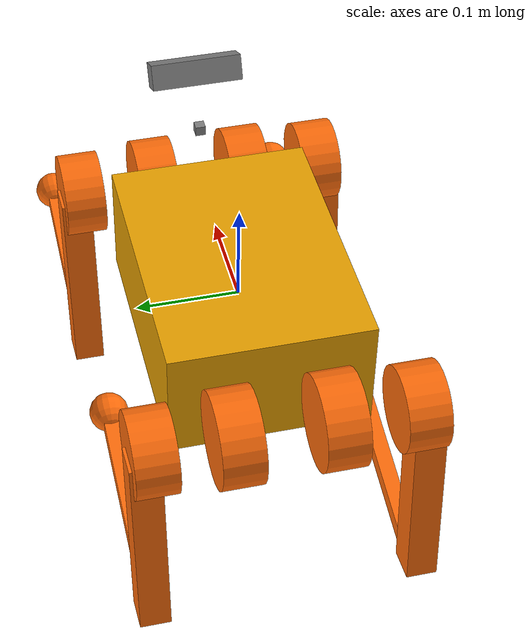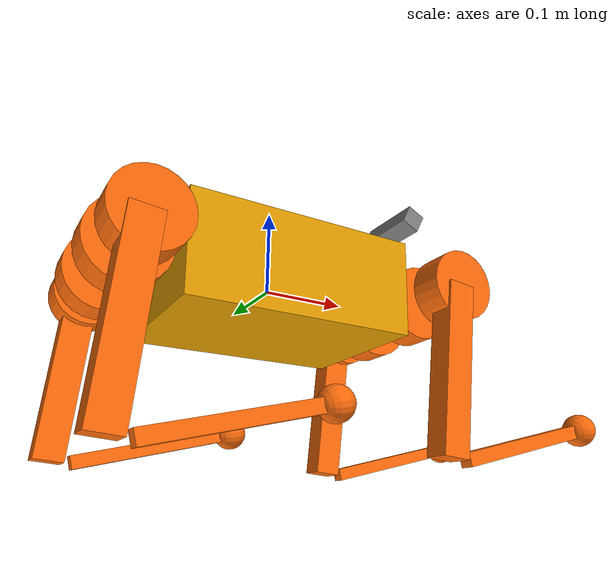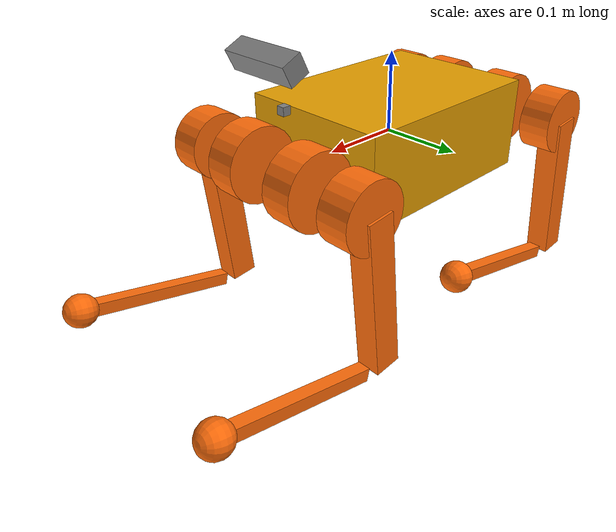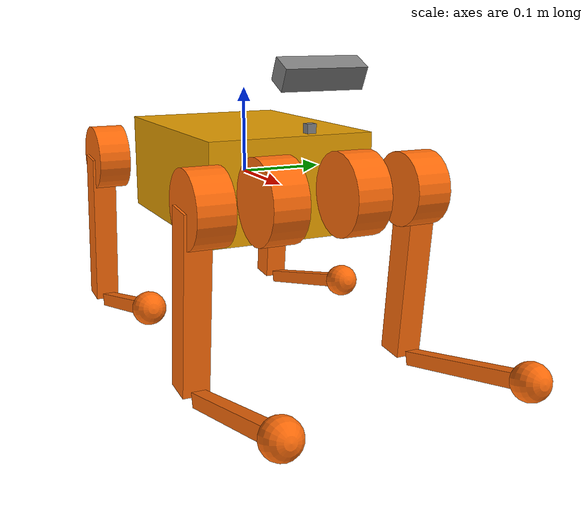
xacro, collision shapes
<?xml version="1.0"?>

<robot xmlns:xacro="http://www.ros.org/wiki/xacro" name="robot">
    <xacro:arg name="sim" default="false" />
    <xacro:arg name="robot_type" default="a1" />
    <xacro:arg name="ns" default="" />

    <xacro:include filename="$(find legged_unitree_description)/urdf/common/materials.xacro" />
    <xacro:include filename="$(find legged_unitree_description)/urdf/common/leg.xacro" />
    <xacro:include filename="$(find legged_unitree_description)/urdf/common/imu.xacro" />
    <xacro:include filename="$(find legged_unitree_description)/urdf/$(arg robot_type)/const.xacro" />
    <xacro:include filename="$(find custom_description)/urdf/sensor_d435.xacro" />
    <xacro:include filename="$(find custom_description)/urdf/sensor_t265.xacro" />

    <xacro:property name="mesh_path"
        value="package://legged_unitree_description/meshes/$(arg robot_type)" />

    <link name="base">
        <visual>
            <origin rpy="0 0 0" xyz="0 0 0" />
            <geometry>
                <mesh filename="${mesh_path}/trunk.dae" scale="1 1 1" />
            </geometry>
        </visual>
        <collision>
            <origin rpy="0 0 0" xyz="0 0 0" />
            <geometry>
                <box size="${trunk_length} ${trunk_width} ${trunk_height}" />
            </geometry>
        </collision>
        <inertial>
            <origin rpy="0 0 0" xyz="${trunk_com_x} ${trunk_com_y} ${trunk_com_z}" />
            <mass value="${trunk_mass}" />
            <inertia
                ixx="${trunk_ixx}" ixy="${trunk_ixy}" ixz="${trunk_ixz}"
                iyy="${trunk_iyy}" iyz="${trunk_iyz}"
                izz="${trunk_izz}" />
        </inertial>
    </link>

    <xacro:IMU connected_to="base" imu_name="base_imu" xyz="0. 0. 0." rpy="0. 0. 0." />

    <xacro:leg prefix="LF" mesh_path="${mesh_path}" mirror="1" mirror_dae="True" front_hind="1"
        front_hind_dae="True">
        <origin rpy="0 0 0" xyz="${leg_offset_x} ${leg_offset_y} 0" />
    </xacro:leg>

    <xacro:leg prefix="LH" mesh_path="${mesh_path}" mirror="1" mirror_dae="True" front_hind="-1"
        front_hind_dae="False">
        <origin rpy="0 0 0" xyz="${-leg_offset_x} ${leg_offset_y} 0" />
    </xacro:leg>

    <xacro:leg prefix="RF" mesh_path="${mesh_path}" mirror="-1" mirror_dae="False" front_hind="1"
        front_hind_dae="True">
        <origin rpy="0 0 0" xyz="${leg_offset_x} ${-leg_offset_y} 0" />
    </xacro:leg>

    <xacro:leg prefix="RH" mesh_path="${mesh_path}" mirror="-1" mirror_dae="False" front_hind="-1"
        front_hind_dae="False">
        <origin rpy="0 0 0" xyz="${-leg_offset_x} ${-leg_offset_y} 0" />
    </xacro:leg>

    <xacro:sensor_t265 name="tracking_camera" topics_ns="$(arg ns)/tracking_camera" parent="base">
        <origin xyz="0.17 0.0 0.07" rpy="0 0.0 0" />
    </xacro:sensor_t265>

    <xacro:sensor_d435 name="front_camera" topics_ns="$(arg ns)/front_camera" parent="base"
        sim="$(arg sim)">
        <origin xyz="0.185 0.0 0.115" rpy="0 0.45 0" />
    </xacro:sensor_d435>

    <!-- ros_control plugin -->
    <xacro:if value="$(arg sim)">

        <gazebo>
            <plugin name="gazebo_ros_control" filename="libcustom_legged_hw_sim.so">
                <robotNamespace>/$(arg ns)</robotNamespace>
                <robotParam>legged_robot_description</robotParam>
                <robotSimType>custom_gazebo/CustomLeggedHWSim</robotSimType>
            </plugin>
        </gazebo>

        <gazebo>
            <plugin name="p3d_base_controller" filename="libgazebo_ros_p3d.so">
                <alwaysOn>true</alwaysOn>
                <updateRate>1000.0</updateRate>
                <bodyName>base</bodyName>
                <topicName>ground_truth/state</topicName>
                <gaussianNoise>0</gaussianNoise>
                <frameName>world</frameName>
                <xyzOffsets>0 0 0</xyzOffsets>
                <rpyOffsets>0 0 0</rpyOffsets>
            </plugin>
        </gazebo>

    </xacro:if>

</robot>

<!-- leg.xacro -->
<robot xmlns:xacro="http://www.ros.org/wiki/xacro">

    <xacro:include filename="$(find legged_unitree_description)/urdf/common/transmission.xacro"/>

    <xacro:macro name="leg" params="prefix mirror mirror_dae front_hind front_hind_dae *origin">

        <joint name="${prefix}_HAA" type="revolute">
            <xacro:insert_block name="origin"/>
            <parent link="base"/>
            <child link="${prefix}_hip"/>
            <axis xyz="1 0 0"/>
            <dynamics damping="${damping}" friction="${friction}"/>
            <xacro:if value="${(mirror_dae == True)}">
                <limit effort="${hip_torque_max}" velocity="${hip_velocity_max}" lower="${hip_min}" upper="${hip_max}"/>
            </xacro:if>
            <xacro:if value="${(mirror_dae == False)}">
                <limit effort="${hip_torque_max}" velocity="${hip_velocity_max}" lower="${-hip_max}" upper="${-hip_min}"/>
            </xacro:if>
        </joint>

        <link name="${prefix}_hip">
            <visual>
                <xacro:if value="${(mirror_dae == True) and (front_hind_dae == True)}">
                    <origin rpy="0 0 0" xyz="0 0 0"/>
                </xacro:if>
                <xacro:if value="${(mirror_dae == False) and (front_hind_dae == True)}">
                    <origin rpy="${pi} 0 0" xyz="0 0 0"/>
                </xacro:if>
                <xacro:if value="${(mirror_dae == True) and (front_hind_dae == False)}">
                    <origin rpy="0 ${pi} 0" xyz="0 0 0"/>
                </xacro:if>
                <xacro:if value="${(mirror_dae == False) and (front_hind_dae == False)}">
                    <origin rpy="${pi} ${pi} 0" xyz="0 0 0"/>
                </xacro:if>
                <geometry>
                    <mesh filename="package://legged_unitree_description/meshes/$(arg robot_type)/hip.dae"
                          scale="1 1 1"/>
                </geometry>
                <material name="orange"/>
            </visual>
            <collision>
                <origin rpy="${pi/2.0} 0 0" xyz="0 0 0"/>
                <geometry>
                    <cylinder length="${hip_length}" radius="${hip_radius}"/>
                </geometry>
            </collision>
            <inertial>
                <origin rpy="0 0 0" xyz="${hip_com_x*front_hind} ${hip_com_y*mirror} ${hip_com_z}"/>
                <mass value="${hip_mass}"/>
                <inertia
                        ixx="${hip_ixx}" ixy="${hip_ixy*mirror*front_hind}" ixz="${hip_ixz*front_hind}"
                        iyy="${hip_iyy}" iyz="${hip_iyz*mirror}"
                        izz="${hip_izz}"/>
            </inertial>
        </link>

        <joint name="${prefix}_HFE" type="revolute">
            <origin rpy="0 0 0" xyz="0 ${thigh_offset*mirror} 0"/>
            <parent link="${prefix}_hip"/>
            <child link="${prefix}_thigh"/>
            <axis xyz="0 1 0"/>
            <dynamics damping="${damping}" friction="${friction}"/>
            <limit effort="${thigh_torque_max}" velocity="${thigh_velocity_max}" lower="${thigh_min}" upper="${thigh_max}"/>
        </joint>

        <link name="${prefix}_thigh">
            <visual>
                <origin rpy="0 0 0" xyz="0 0 0"/>
                <geometry>
                    <xacro:if value="${mirror_dae == True}">
                        <mesh filename="package://legged_unitree_description/meshes/$(arg robot_type)/thigh.dae"
                              scale="1 1 1"/>
                    </xacro:if>
                    <xacro:if value="${mirror_dae == False}">
                        <mesh filename="package://legged_unitree_description/meshes/$(arg robot_type)/thigh_mirror.dae"
                              scale="1 1 1"/>
                    </xacro:if>
                </geometry>
                <material name="orange"/>
            </visual>
            <collision>
                <origin rpy="0 ${pi/2.0+0.1} 0" xyz="${thigh_x_offset} 0 ${-thigh_length/2.0}"/>
                <geometry>
                    <box size="${thigh_length} ${thigh_width} ${thigh_height}"/>
                </geometry>
            </collision>
            <collision>
                <origin rpy="${pi/2.0} 0 0" xyz="0 ${mirror*thigh_shoulder_y_offset} 0"/>
                <geometry>
                    <cylinder length="${thigh_shoulder_length}" radius="${thigh_shoulder_radius}"/>
                </geometry>
            </collision>
            <inertial>
                <origin rpy="0 0 0" xyz="${thigh_com_x} ${thigh_com_y*mirror} ${thigh_com_z}"/>
                <mass value="${thigh_mass}"/>
                <inertia
                        ixx="${thigh_ixx}" ixy="${thigh_ixy*mirror}" ixz="${thigh_ixz}"
                        iyy="${thigh_iyy}" iyz="${thigh_iyz*mirror}"
                        izz="${thigh_izz}"/>
            </inertial>
        </link>

        <joint name="${prefix}_KFE" type="revolute">
            <origin rpy="0 0 0" xyz="0 0 ${-thigh_length}"/>
            <parent link="${prefix}_thigh"/>
            <child link="${prefix}_calf"/>
            <axis xyz="0 1 0"/>
            <dynamics damping="${damping}" friction="${friction}"/>
            <limit effort="${calf_torque_max}" velocity="${calf_velocity_max}" lower="${calf_min}" upper="${calf_max}"/>
        </joint>

        <link name="${prefix}_calf">
            <visual>
                <origin rpy="0 0 0" xyz="0 0 0"/>
                <geometry>
                    <mesh filename="package://legged_unitree_description/meshes/$(arg robot_type)/calf.dae"
                          scale="1 1 1"/>
                </geometry>
                <material name="orange"/>
            </visual>
            <collision>
                <origin rpy="0 ${pi/2.0} 0" xyz="${calf_x_offset} 0 ${-calf_length/2.0}"/>
                <geometry>
                    <box size="${calf_length} ${calf_width} ${calf_height}"/>
                </geometry>
            </collision>
            <inertial>
                <origin rpy="0 0 0" xyz="${calf_com_x} ${calf_com_y} ${calf_com_z}"/>
                <mass value="${calf_mass}"/>
                <inertia
                        ixx="${calf_ixx}" ixy="${calf_ixy}" ixz="${calf_ixz}"
                        iyy="${calf_iyy}" iyz="${calf_iyz}"
                        izz="${calf_izz}"/>
            </inertial>
        </link>

        <joint name="${prefix}_foot_fixed" type="fixed">
            <origin rpy="0 0 0" xyz="0 0 ${-(calf_length)}"/>
            <parent link="${prefix}_calf"/>
            <child link="${prefix}_FOOT"/>
        </joint>

        <link name="${prefix}_FOOT">
            <visual>
                <origin rpy="0 0 0" xyz="0 0 0"/>
                <geometry>
                    <sphere radius="${foot_radius-0.01}"/>
                </geometry>
                <material name="orange"/>
            </visual>
            <collision>
                <origin rpy="0 0 0" xyz="0 0 0"/>
                <geometry>
                    <sphere radius="${foot_radius}"/>
                </geometry>
            </collision>
            <inertial>
                <mass value="${foot_mass}"/>
                <inertia
                        ixx="${(2*foot_mass)/5.0*(foot_radius*foot_radius)}" ixy="0.0" ixz="0.0"
                        iyy="${(2*foot_mass)/5.0*(foot_radius*foot_radius)}" iyz="0.0"
                        izz="${(2*foot_mass)/5.0*(foot_radius*foot_radius)}"/>
            </inertial>
        </link>

        <gazebo reference="${prefix}_foot_fixed">
            <disableFixedJointLumping>true</disableFixedJointLumping>
        </gazebo>

        <gazebo reference="${prefix}_hip">
            <mu1>0.2</mu1>
            <mu2>0.2</mu2>
            <material>Gazebo/DarkGrey</material>
        </gazebo>
        <gazebo reference="${prefix}_thigh">
            <mu1>0.2</mu1>
            <mu2>0.2</mu2>
            <self_collide>1</self_collide>
            <material>Gazebo/DarkGrey</material>
            <kp value="1000000.0"/>
            <kd value="100.0"/>
        </gazebo>
        <gazebo reference="${prefix}_calf">
            <mu1>0.6</mu1>
            <mu2>0.6</mu2>
            <self_collide>1</self_collide>
            <!-- 下面3行是自己加上的 -->
            <material>Gazebo/White</material>
            <kp value="1000000.0"/>
            <kd value="100.0"/>
        </gazebo>
        <gazebo reference="${prefix}_FOOT">
            <mu1>0.6</mu1>
            <mu2>0.6</mu2>
            <self_collide>1</self_collide>
            <material>Gazebo/DarkGrey</material>
            <kp value="1000000.0"/>
            <kd value="100.0"/>
        </gazebo>

        <xacro:leg_transmission name="${prefix}"/>
    </xacro:macro>
</robot>

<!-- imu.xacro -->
<robot xmlns:xacro="http://www.ros.org/wiki/xacro" name="imu">
<!-- imu_name="unitree_imu" -->
    <xacro:macro name="IMU" params="connected_to imu_name xyz:='0 0 0' rpy:='0 0 0' ">
        <!-- Imu is fixed to the base link -->
        <joint name="${imu_name}_joint" type="fixed">
            <origin xyz="${xyz}" rpy="${rpy}"/>
            <parent link="${connected_to}"/>
            <child link="${imu_name}"/>
        </joint>
        <!-- Imu link -->
        <link name="${imu_name}">
            <inertial>
                <mass value="0.01"/>
                <origin rpy="0 0 0" xyz="0 0 0"/>
                <inertia ixx="0.000001" ixy="0" ixz="0" iyy="0.000001" iyz="0" izz="0.000001"/>
            </inertial>
            <visual>
                <origin rpy="0 0 0" xyz="0 0 0"/>
                <geometry>
                    <box size="0.015 0.015 0.004"/>
                </geometry>
            </visual>
            <material name="orange">
                <color rgba="255 108 10 255"/>
            </material>
        </link>

        <gazebo reference="${imu_name}">
            <material>Gazebo/Orange</material>
        </gazebo>
            <gazebo reference="${imu_name}_joint">
        <disableFixedJointLumping>true</disableFixedJointLumping>
    </gazebo>

    </xacro:macro>
</robot>

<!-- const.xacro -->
<robot xmlns:xacro="http://www.ros.org/wiki/xacro" name="a1_description">

    <!-- Constants for robot dimensions -->
    <xacro:property name="stick_mass" value="0.00001"/>

    <!-- simplified collision value -->
    <xacro:property name="trunk_width" value="0.194"/>
    <xacro:property name="trunk_length" value="0.267"/>
    <xacro:property name="trunk_height" value="0.114"/>
    <xacro:property name="hip_radius" value="0.046"/>
    <xacro:property name="hip_length" value="0.04"/>
    <xacro:property name="thigh_shoulder_radius" value="0.041"/>
    <xacro:property name="thigh_shoulder_length" value="0.04"/>
    <xacro:property name="thigh_shoulder_y_offset" value="-0.008"/>

    <xacro:property name="thigh_width" value="0.03"/>
    <xacro:property name="thigh_height" value="0.034"/>
    <xacro:property name="thigh_x_offset" value="-0.015"/>
    <xacro:property name="calf_width" value="0.016"/>
    <xacro:property name="calf_height" value="0.016"/>
    <xacro:property name="calf_x_offset" value="0.0"/>
    <xacro:property name="foot_radius" value="0.02"/>

    <!-- kinematic value -->
    <xacro:property name="thigh_offset" value="0.0838"/>
    <xacro:property name="thigh_length" value="0.2"/>
    <xacro:property name="calf_length" value="0.2"/>

    <!-- leg offset from trunk center value -->
    <xacro:property name="leg_offset_x" value="0.1805"/>
    <xacro:property name="leg_offset_y" value="0.047"/>
    <xacro:property name="trunk_offset_z" value="0.01675"/>
    <xacro:property name="hip_offset" value="0.065"/>

    <!-- joint limits -->
    <xacro:property name="damping" value="0"/>
    <xacro:property name="friction" value="0"/>

    <xacro:property name="hip_max" value="${46*pi/180.0}"/>
    <xacro:property name="hip_min" value="${-46*pi/180.0}"/>

    <xacro:property name="hip_velocity_max" value="21"/>
    <xacro:property name="hip_torque_max" value="33.5"/>

    <xacro:property name="thigh_max" value="${240*pi/180.0}"/>
    <xacro:property name="thigh_min" value="${-60*pi/180.0}"/>

    <xacro:property name="thigh_velocity_max" value="21"/>
    <xacro:property name="thigh_torque_max" value="33.5"/>

    <xacro:property name="calf_max" value="${-52.5*pi/180.0}"/>
    <xacro:property name="calf_min" value="${-154.5*pi/180.0}"/>

    <xacro:property name="calf_velocity_max" value="21"/>
    <xacro:property name="calf_torque_max" value="33.5"/>

    <!-- dynamics inertial value -->
    <!-- trunk -->
    <xacro:property name="trunk_mass" value="6.0"/>
    <xacro:property name="trunk_com_x" value="0.0000"/>
    <xacro:property name="trunk_com_y" value="0.0041"/>
    <xacro:property name="trunk_com_z" value="-0.0005"/>
    <xacro:property name="trunk_ixx" value="0.0158533"/>
    <xacro:property name="trunk_ixy" value="-0.0000366"/>
    <xacro:property name="trunk_ixz" value="-0.0000611"/>
    <xacro:property name="trunk_iyy" value="0.0377999"/>
    <xacro:property name="trunk_iyz" value="-0.0000275"/>
    <xacro:property name="trunk_izz" value="0.0456542"/>

    <!-- hip (left front) -->
    <xacro:property name="hip_mass" value="0.595"/>
    <xacro:property name="hip_com_x" value="-0.003875"/>
    <xacro:property name="hip_com_y" value="0.001622"/>
    <xacro:property name="hip_com_z" value="0.000042"/>
    <xacro:property name="hip_ixx" value="0.000402747"/>
    <xacro:property name="hip_ixy" value="-0.000008709"/>
    <xacro:property name="hip_ixz" value="-0.000000297"/>
    <xacro:property name="hip_iyy" value="0.000691123"/>
    <xacro:property name="hip_iyz" value="-0.000000545"/>
    <xacro:property name="hip_izz" value="0.000487919"/>

    <!-- thigh -->
    <xacro:property name="thigh_mass" value="0.888"/>
    <xacro:property name="thigh_com_x" value="-0.003574"/>
    <xacro:property name="thigh_com_y" value="-0.019529"/>
    <xacro:property name="thigh_com_z" value="-0.030323"/>
    <xacro:property name="thigh_ixx" value="0.005251806"/>
    <xacro:property name="thigh_ixy" value="-0.000002168"/>
    <xacro:property name="thigh_ixz" value="0.000346889"/>
    <xacro:property name="thigh_iyy" value="0.005000475"/>
    <xacro:property name="thigh_iyz" value="-0.000028174"/>
    <xacro:property name="thigh_izz" value="0.001110200"/>

    <!-- calf -->
    <xacro:property name="calf_mass" value="0.151"/>
    <xacro:property name="calf_com_x" value="0.007105"/>
    <xacro:property name="calf_com_y" value="-0.000239"/>
    <xacro:property name="calf_com_z" value="-0.096933"/>
    <xacro:property name="calf_ixx" value="0.002344758"/>
    <xacro:property name="calf_ixy" value="0.0"/>
    <xacro:property name="calf_ixz" value="-0.000141275"/>
    <xacro:property name="calf_iyy" value="0.002360755"/>
    <xacro:property name="calf_iyz" value="0.0"/>
    <xacro:property name="calf_izz" value="0.000031158"/>

    <!-- foot -->
    <xacro:property name="foot_mass" value="0.06"/>

</robot>

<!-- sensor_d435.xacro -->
<robot xmlns:xacro="http://ros.org/wiki/xacro">

    <xacro:macro name="sensor_d435"
                 params="name:=camera topics_ns:=camera parent *origin publish_pointcloud:=true sim:=true">
        <xacro:property name="M_PI" value="3.1415926535897931"/>

        <!-- The following values are approximate, and the camera node
         publishing TF values with actual calibrated camera extrinsic values -->
        <xacro:property name="d435_cam_depth_to_left_ir_offset" value="0.0"/>
        <xacro:property name="d435_cam_depth_to_right_ir_offset" value="-0.050"/>
        <xacro:property name="d435_cam_depth_to_color_offset" value="0.015"/>

        <!-- The following values model the aluminum peripherial case for the
        D435 camera, with the camera joint represented by the actual
        peripherial camera tripod mount -->
        <xacro:property name="d435_cam_width" value="0.090"/>
        <xacro:property name="d435_cam_height" value="0.025"/>
        <xacro:property name="d435_cam_depth" value="0.02505"/>
        <xacro:property name="d435_cam_mount_from_center_offset" value="0.0149"/>

        <!-- The following offset is relative the physical D435 camera peripherial
        camera tripod mount -->
        <xacro:property name="d435_cam_depth_px" value="${d435_cam_mount_from_center_offset}"/>
        <xacro:property name="d435_cam_depth_py" value="0.0175"/>
        <xacro:property name="d435_cam_depth_pz" value="${d435_cam_height/2}"/>

        <material name="${name}_aluminum">
            <color rgba="0.5 0.5 0.5 1"/>
        </material>

        <!-- camera body, with origin at bottom screw mount -->
        <joint name="${name}_joint" type="fixed">
            <xacro:insert_block name="origin"/>
            <parent link="${parent}"/>
            <child link="${name}_bottom_screw_frame"/>
        </joint>
        <link name="${name}_bottom_screw_frame"/>

        <joint name="${name}_link_joint" type="fixed">
            <origin xyz="0 ${d435_cam_depth_py} ${d435_cam_depth_pz}" rpy="0 0 0"/>
            <parent link="${name}_bottom_screw_frame"/>
            <child link="${name}_link"/>
        </joint>

        <link name="${name}_link">
            <visual>
                <origin xyz="${d435_cam_mount_from_center_offset} ${-d435_cam_depth_py} 0" rpy="${M_PI/2} 0 ${M_PI/2}"/>
                <geometry>
                    <mesh filename="package://realsense2_description/meshes/d435.dae"/>
                </geometry>
                <material name="${name}_aluminum"/>
            </visual>
            <collision>
                <origin xyz="0 ${-d435_cam_depth_py} 0" rpy="0 0 0"/>
                <geometry>
                    <box size="${d435_cam_depth} ${d435_cam_width} ${d435_cam_height}"/>
                </geometry>
            </collision>
            <inertial>
                <!-- The following are not reliable values, and should not be used for modeling -->
                <mass value="0.072"/>
                <origin xyz="0 0 0"/>
                <inertia ixx="0.003881243" ixy="0.0" ixz="0.0" iyy="0.000498940" iyz="0.0" izz="0.003879257"/>
            </inertial>
        </link>

        <xacro:if value="${sim}">
            <!-- camera depth joints and links -->
            <joint name="${name}_depth_joint" type="fixed">
                <origin xyz="0 0 0" rpy="0 0 0"/>
                <parent link="${name}_link"/>
                <child link="${name}_depth_frame"/>
            </joint>
            <link name="${name}_depth_frame"/>

            <joint name="${name}_depth_optical_joint" type="fixed">
                <origin xyz="0 0 0" rpy="${-M_PI/2} 0 ${-M_PI/2}"/>
                <parent link="${name}_depth_frame"/>
                <child link="${name}_depth_optical_frame"/>
            </joint>
            <link name="${name}_depth_optical_frame"/>

            <!-- camera left IR joints and links -->
            <joint name="${name}_left_ir_joint" type="fixed">
                <origin xyz="0 ${d435_cam_depth_to_left_ir_offset} 0" rpy="0 0 0"/>
                <parent link="${name}_depth_frame"/>
                <child link="${name}_left_ir_frame"/>
            </joint>
            <link name="${name}_left_ir_frame"/>

            <joint name="${name}_left_ir_optical_joint" type="fixed">
                <origin xyz="0 0 0" rpy="${-M_PI/2} 0 ${-M_PI/2}"/>
                <parent link="${name}_left_ir_frame"/>
                <child link="${name}_left_ir_optical_frame"/>
            </joint>
            <link name="${name}_left_ir_optical_frame"/>

            <!-- camera right IR joints and links -->
            <joint name="${name}_right_ir_joint" type="fixed">
                <origin xyz="0 ${d435_cam_depth_to_right_ir_offset} 0" rpy="0 0 0"/>
                <parent link="${name}_depth_frame"/>
                <child link="${name}_right_ir_frame"/>
            </joint>
            <link name="${name}_right_ir_frame"/>

            <joint name="${name}_right_ir_optical_joint" type="fixed">
                <origin xyz="0 0 0" rpy="${-M_PI/2} 0 ${-M_PI/2}"/>
                <parent link="${name}_right_ir_frame"/>
                <child link="${name}_right_ir_optical_frame"/>
            </joint>
            <link name="${name}_right_ir_optical_frame"/>

            <!-- camera color joints and links -->
            <joint name="${name}_color_joint" type="fixed">
                <origin xyz="0 ${d435_cam_depth_to_color_offset} 0" rpy="0 0 0"/>
                <parent link="${name}_depth_frame"/>
                <child link="${name}_color_frame"/>
            </joint>
            <link name="${name}_color_frame"/>

            <joint name="${name}_color_optical_joint" type="fixed">
                <origin xyz="0 0 0" rpy="${-M_PI/2} 0 ${-M_PI/2}"/>
                <parent link="${name}_color_frame"/>
                <child link="${name}_color_optical_frame"/>
            </joint>
            <link name="${name}_color_optical_frame"/>

            <xacro:include filename="$(find custom_description)/urdf/gazebo_d435.xacro"/>
            <!-- Realsense Gazebo Plugin -->
    <xacro:gazebo_d435 camera_name="${name}" reference_link="${name}_link" topics_ns="${topics_ns}" depth_optical_frame="${name}_depth_optical_frame" color_optical_frame="${name}_color_optical_frame" infrared1_optical_frame="${name}_left_ir_optical_frame" infrared2_optical_frame="${name}_right_ir_optical_frame"/>

</xacro:if>
</xacro:macro>
</robot>

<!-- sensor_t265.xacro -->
<robot xmlns:xacro="http://ros.org/wiki/xacro" name="sensor_t265">

    <xacro:macro name="sensor_t265" params="parent name:=camera topics_ns:=camera *origin">
        <xacro:property name="M_PI" value="3.1415926535897931"/>
        <xacro:property name="deg_to_rad" value="0.01745329251994329577"/>

        <!-- The following values are approximate, and the camera node
         publishing TF values with actual calibrated camera extrinsic values -->
        <xacro:property name="fisheye1_offset_x" value="-0.0411"/>
        <xacro:property name="fisheye1_offset_y" value="0.0"/>
        <xacro:property name="fisheye1_offset_z" value="0.0"/>

        <xacro:property name="fisheye2_offset_x" value="0.0229"/>
        <xacro:property name="fisheye2_offset_y" value="0.0"/>
        <xacro:property name="fisheye2_offset_z" value="0.0"/>

        <material name="${name}_aluminum">
            <color rgba="0.5 0.5 0.5 1"/>
        </material>

        <!-- camera body, with origin at camera_link -->
        <joint name="${name}_pose_frame_joint" type="fixed">
            <xacro:insert_block name="origin"/>
            <parent link="${parent}"/>
            <child link="${name}_pose_frame"/>
        </joint>
        <link name="${name}_pose_frame"/>

        <joint name="${name}_pose_joint" type="fixed">
            <origin xyz="0 0 0" rpy="${90 * deg_to_rad} 0 ${-90 * deg_to_rad}"/>
            <parent link="${name}_pose_frame"/>
            <child link="${name}_link"/>
        </joint>

        <link name="${name}_link">
            <visual>
                <origin xyz="0 0 0" rpy="0 0 0"/>
                <geometry>
                    <mesh
                    filename="package://custom_description/meshes/t265.stl"
                    scale="0.001 0.001 0.001"/>
                </geometry>
                <material name="${name}_aluminum"/>
            </visual>
            <collision>
                <origin xyz="0 0 0" rpy="0 0 0"/>
                <geometry>
                    <box size="0.01 0.01 0.01" />
                </geometry>
            </collision>
            <inertial>
                <!-- The following are not reliable values, and should not be used for modeling -->
                <mass value="0.068024"/>
                <origin xyz="0 0 0"/>
                <inertia ixx="0.0000039782" ixy="0.0" ixz="0.000000034641" iyy="0.000065045" iyz="0.0"
                         izz="0.000067499"/>
            </inertial>
        </link>

        <joint name="${name}_fisheye1_rgb_joint" type="fixed">
            <origin xyz="${fisheye1_offset_x} ${fisheye1_offset_y} ${fisheye1_offset_z}" rpy="0 ${M_PI/2} ${M_PI/2}"/>
            <parent link="${name}_link"/>
            <child link="${name}_fisheye1_rgb_frame"/>
        </joint>
        <link name="${name}_fisheye1_rgb_frame"/>

        <joint name="${name}_fisheye2_rgb_joint" type="fixed">
            <origin xyz="${fisheye2_offset_x} ${fisheye2_offset_y} ${fisheye2_offset_z}" rpy="0 ${M_PI/2} ${M_PI/2}"/>
            <parent link="${name}_link"/>
            <child link="${name}_fisheye2_rgb_frame"/>
        </joint>
        <link name="${name}_fisheye2_rgb_frame"/>

        <joint name="${name}_fisheye1_optical_joint" type="fixed">
            <origin xyz="0 0 0" rpy="-${M_PI/2} 0 -${M_PI/2}"/>
            <parent link="${name}_fisheye1_rgb_frame"/>
            <child link="${name}_fisheye1_optical_frame"/>
        </joint>
        <link name="${name}_fisheye1_optical_frame"/>

        <joint name="${name}_fisheye2_optical_joint" type="fixed">
            <origin xyz="0 0 0" rpy="-${M_PI/2} 0 -${M_PI/2}"/>
            <parent link="${name}_fisheye2_rgb_frame"/>
            <child link="${name}_fisheye2_optical_frame"/>
        </joint>
        <link name="${name}_fisheye2_optical_frame"/>

        <!-- camera depth joints and links -->
        <joint name="${name}_gyro_optical_joint" type="fixed">
            <origin xyz="-0.0311 0 0.00655" rpy="0 ${M_PI} 0"/>
            <parent link="${name}_link"/>
            <child link="${name}_gyro_optical_frame"/>
        </joint>
        <link name="${name}_gyro_optical_frame"/>

        <joint name="${name}_accel_optical_joint" type="fixed">
            <origin xyz="0 0 0" rpy="0 0 0"/>
            <parent link="${name}_gyro_optical_frame"/>
            <child link="${name}_accel_optical_frame"/>
        </joint>
        <link name="${name}_accel_optical_frame"/>

        <gazebo reference="${name}_pose_frame_joint">
            <disableFixedJointLumping>true</disableFixedJointLumping>
        </gazebo>

        <gazebo>
            <plugin name="p3d_base_controller" filename="libgazebo_ros_p3d.so">
                <alwaysOn>true</alwaysOn>
                <updateRate>50.0</updateRate>
                <bodyName>${name}_pose_frame</bodyName>
                <topicName>${topics_ns}/odom/sample</topicName>
                <gaussianNoise>0</gaussianNoise>
                <frameName>world</frameName>
                <xyzOffsets>0 0 0</xyzOffsets>
                <rpyOffsets>0 0 0</rpyOffsets>
            </plugin>
        </gazebo>

    </xacro:macro>
</robot>
